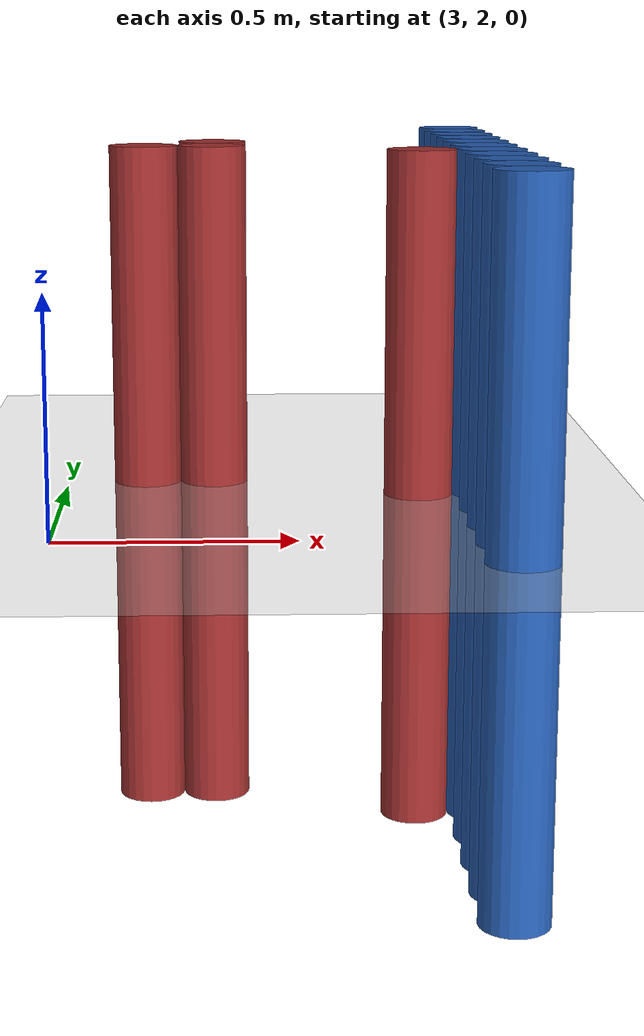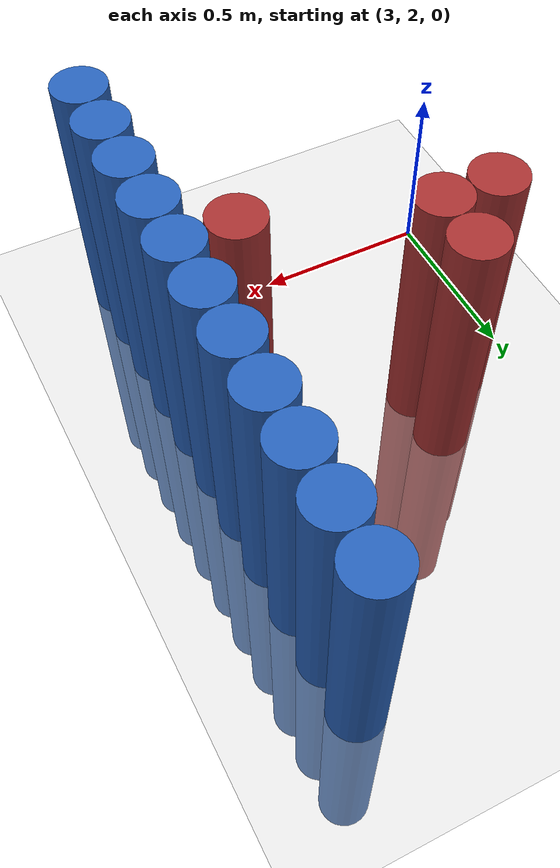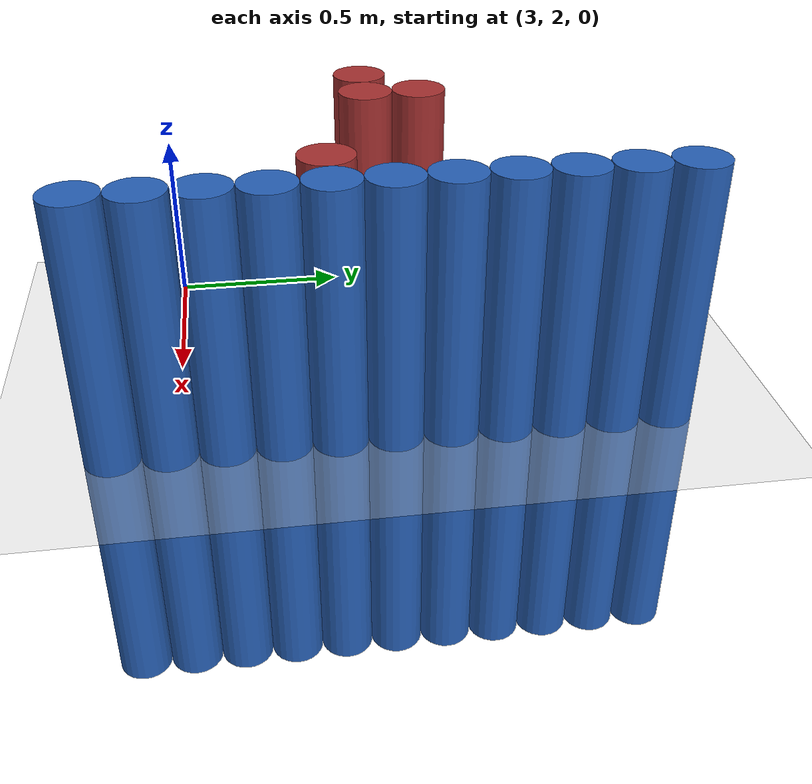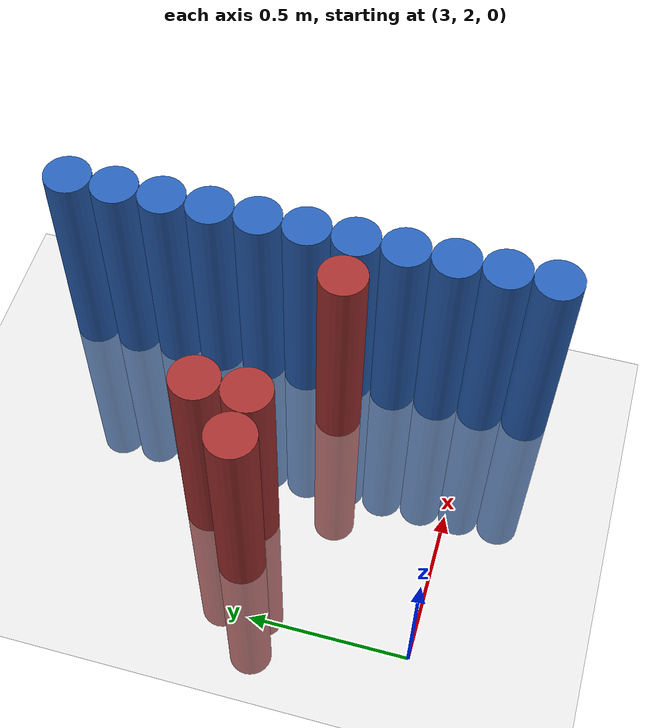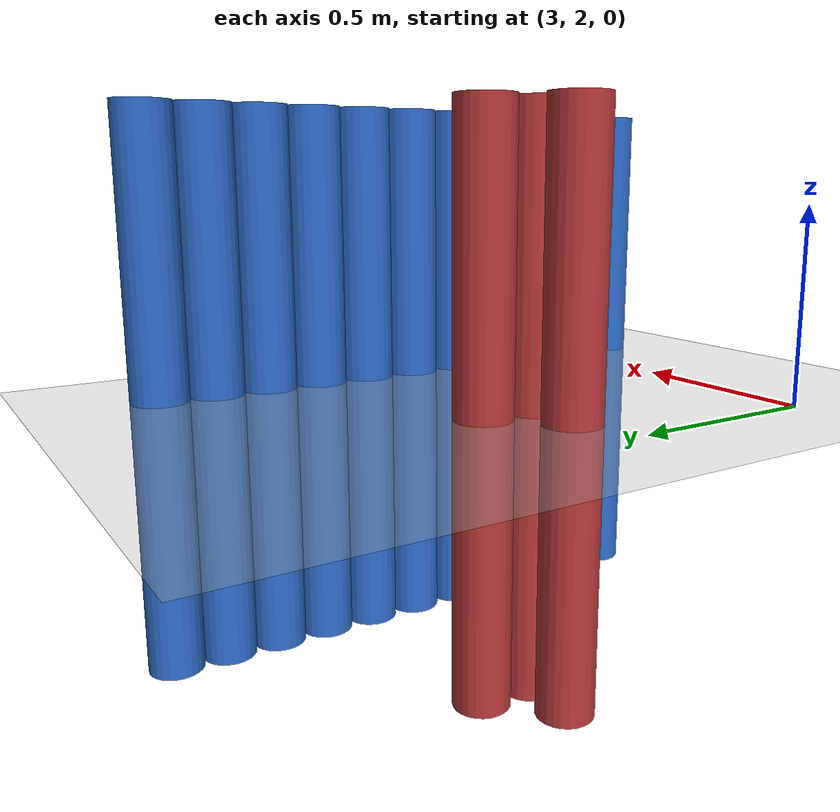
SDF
<sdf version="1.6">
 <world name="default">
  <model name="ground_plane">
   <static>1</static>
   <link name="link">
    <collision name="collision">
     <geometry><plane><normal>0 0 1</normal><size>100 100</size></plane></geometry>
     <surface><friction><ode><mu>100</mu><mu2>50</mu2></ode></friction></surface>
    </collision>
    <visual name="visual">
     <cast_shadows>0</cast_shadows>
     <geometry><plane><normal>0 0 1</normal><size>100 100</size></plane></geometry>
     <material>
      <script><uri>file://media/materials/scripts/gazebo.material</uri><name>Gazebo/Grey</name></script>
     </material>
    </visual>
   </link>
  </model>
  <model name="unit_cylinder_140">
   <static>1</static>
   <pose>3.925000 1.975000 0.000000 0.000000 0.000000 0.000000</pose>
   <link name="link">
    <inertial>
     <mass>1</mass>
     <inertia><ixx>0.145833</ixx><ixy>0</ixy><ixz>0</ixz><iyy>0.145833</iyy><iyz>0</iyz><izz>0.125</izz></inertia>
    </inertial>
    <collision name="collision">
     <geometry><cylinder><radius>0.075000</radius><length>1.5</length></cylinder></geometry>
    </collision>
    <visual name="visual">
     <geometry><cylinder><radius>0.075000</radius><length>1.5</length></cylinder></geometry>
     <material>
      <ambient>0.152000 0.379000 0.720000 1</ambient>
      <diffuse>0.152000 0.379000 0.720000 1</diffuse>
     </material>
     <material>
      <script><name>Gazebo/Grey</name><uri>file://media/materials/scripts/gazebo.material</uri></script>
     </material>
    </visual>
   </link>
  </model>
  <model name="unit_cylinder_142">
   <static>1</static>
   <pose>3.925000 2.125000 0.000000 0.000000 0.000000 0.000000</pose>
   <link name="link">
    <inertial>
     <mass>1</mass>
     <inertia><ixx>0.145833</ixx><ixy>0</ixy><ixz>0</ixz><iyy>0.145833</iyy><iyz>0</iyz><izz>0.125</izz></inertia>
    </inertial>
    <collision name="collision">
     <geometry><cylinder><radius>0.075000</radius><length>1.5</length></cylinder></geometry>
    </collision>
    <visual name="visual">
     <geometry><cylinder><radius>0.075000</radius><length>1.5</length></cylinder></geometry>
     <material>
      <ambient>0.152000 0.379000 0.720000 1</ambient>
      <diffuse>0.152000 0.379000 0.720000 1</diffuse>
     </material>
     <material>
      <script><name>Gazebo/Grey</name><uri>file://media/materials/scripts/gazebo.material</uri></script>
     </material>
    </visual>
   </link>
  </model>
  <model name="unit_cylinder_144">
   <static>1</static>
   <pose>3.925000 2.275000 0.000000 0.000000 0.000000 0.000000</pose>
   <link name="link">
    <inertial>
     <mass>1</mass>
     <inertia><ixx>0.145833</ixx><ixy>0</ixy><ixz>0</ixz><iyy>0.145833</iyy><iyz>0</iyz><izz>0.125</izz></inertia>
    </inertial>
    <collision name="collision">
     <geometry><cylinder><radius>0.075000</radius><length>1.5</length></cylinder></geometry>
    </collision>
    <visual name="visual">
     <geometry><cylinder><radius>0.075000</radius><length>1.5</length></cylinder></geometry>
     <material>
      <ambient>0.152000 0.379000 0.720000 1</ambient>
      <diffuse>0.152000 0.379000 0.720000 1</diffuse>
     </material>
     <material>
      <script><name>Gazebo/Grey</name><uri>file://media/materials/scripts/gazebo.material</uri></script>
     </material>
    </visual>
   </link>
  </model>
  <model name="unit_cylinder_146">
   <static>1</static>
   <pose>3.925000 2.425000 0.000000 0.000000 0.000000 0.000000</pose>
   <link name="link">
    <inertial>
     <mass>1</mass>
     <inertia><ixx>0.145833</ixx><ixy>0</ixy><ixz>0</ixz><iyy>0.145833</iyy><iyz>0</iyz><izz>0.125</izz></inertia>
    </inertial>
    <collision name="collision">
     <geometry><cylinder><radius>0.075000</radius><length>1.5</length></cylinder></geometry>
    </collision>
    <visual name="visual">
     <geometry><cylinder><radius>0.075000</radius><length>1.5</length></cylinder></geometry>
     <material>
      <ambient>0.152000 0.379000 0.720000 1</ambient>
      <diffuse>0.152000 0.379000 0.720000 1</diffuse>
     </material>
     <material>
      <script><name>Gazebo/Grey</name><uri>file://media/materials/scripts/gazebo.material</uri></script>
     </material>
    </visual>
   </link>
  </model>
  <model name="unit_cylinder_148">
   <static>1</static>
   <pose>3.925000 2.575000 0.000000 0.000000 0.000000 0.000000</pose>
   <link name="link">
    <inertial>
     <mass>1</mass>
     <inertia><ixx>0.145833</ixx><ixy>0</ixy><ixz>0</ixz><iyy>0.145833</iyy><iyz>0</iyz><izz>0.125</izz></inertia>
    </inertial>
    <collision name="collision">
     <geometry><cylinder><radius>0.075000</radius><length>1.5</length></cylinder></geometry>
    </collision>
    <visual name="visual">
     <geometry><cylinder><radius>0.075000</radius><length>1.5</length></cylinder></geometry>
     <material>
      <ambient>0.152000 0.379000 0.720000 1</ambient>
      <diffuse>0.152000 0.379000 0.720000 1</diffuse>
     </material>
     <material>
      <script><name>Gazebo/Grey</name><uri>file://media/materials/scripts/gazebo.material</uri></script>
     </material>
    </visual>
   </link>
  </model>
  <model name="unit_cylinder_150">
   <static>1</static>
   <pose>3.925000 2.725000 0.000000 0.000000 0.000000 0.000000</pose>
   <link name="link">
    <inertial>
     <mass>1</mass>
     <inertia><ixx>0.145833</ixx><ixy>0</ixy><ixz>0</ixz><iyy>0.145833</iyy><iyz>0</iyz><izz>0.125</izz></inertia>
    </inertial>
    <collision name="collision">
     <geometry><cylinder><radius>0.075000</radius><length>1.5</length></cylinder></geometry>
    </collision>
    <visual name="visual">
     <geometry><cylinder><radius>0.075000</radius><length>1.5</length></cylinder></geometry>
     <material>
      <ambient>0.152000 0.379000 0.720000 1</ambient>
      <diffuse>0.152000 0.379000 0.720000 1</diffuse>
     </material>
     <material>
      <script><name>Gazebo/Grey</name><uri>file://media/materials/scripts/gazebo.material</uri></script>
     </material>
    </visual>
   </link>
  </model>
  <model name="unit_cylinder_152">
   <static>1</static>
   <pose>3.925000 2.875000 0.000000 0.000000 0.000000 0.000000</pose>
   <link name="link">
    <inertial>
     <mass>1</mass>
     <inertia><ixx>0.145833</ixx><ixy>0</ixy><ixz>0</ixz><iyy>0.145833</iyy><iyz>0</iyz><izz>0.125</izz></inertia>
    </inertial>
    <collision name="collision">
     <geometry><cylinder><radius>0.075000</radius><length>1.5</length></cylinder></geometry>
    </collision>
    <visual name="visual">
     <geometry><cylinder><radius>0.075000</radius><length>1.5</length></cylinder></geometry>
     <material>
      <ambient>0.152000 0.379000 0.720000 1</ambient>
      <diffuse>0.152000 0.379000 0.720000 1</diffuse>
     </material>
     <material>
      <script><name>Gazebo/Grey</name><uri>file://media/materials/scripts/gazebo.material</uri></script>
     </material>
    </visual>
   </link>
  </model>
  <model name="unit_cylinder_154">
   <static>1</static>
   <pose>3.925000 3.025000 0.000000 0.000000 0.000000 0.000000</pose>
   <link name="link">
    <inertial>
     <mass>1</mass>
     <inertia><ixx>0.145833</ixx><ixy>0</ixy><ixz>0</ixz><iyy>0.145833</iyy><iyz>0</iyz><izz>0.125</izz></inertia>
    </inertial>
    <collision name="collision">
     <geometry><cylinder><radius>0.075000</radius><length>1.5</length></cylinder></geometry>
    </collision>
    <visual name="visual">
     <geometry><cylinder><radius>0.075000</radius><length>1.5</length></cylinder></geometry>
     <material>
      <ambient>0.152000 0.379000 0.720000 1</ambient>
      <diffuse>0.152000 0.379000 0.720000 1</diffuse>
     </material>
     <material>
      <script><name>Gazebo/Grey</name><uri>file://media/materials/scripts/gazebo.material</uri></script>
     </material>
    </visual>
   </link>
  </model>
  <model name="unit_cylinder_156">
   <static>1</static>
   <pose>3.925000 3.175000 0.000000 0.000000 0.000000 0.000000</pose>
   <link name="link">
    <inertial>
     <mass>1</mass>
     <inertia><ixx>0.145833</ixx><ixy>0</ixy><ixz>0</ixz><iyy>0.145833</iyy><iyz>0</iyz><izz>0.125</izz></inertia>
    </inertial>
    <collision name="collision">
     <geometry><cylinder><radius>0.075000</radius><length>1.5</length></cylinder></geometry>
    </collision>
    <visual name="visual">
     <geometry><cylinder><radius>0.075000</radius><length>1.5</length></cylinder></geometry>
     <material>
      <ambient>0.152000 0.379000 0.720000 1</ambient>
      <diffuse>0.152000 0.379000 0.720000 1</diffuse>
     </material>
     <material>
      <script><name>Gazebo/Grey</name><uri>file://media/materials/scripts/gazebo.material</uri></script>
     </material>
    </visual>
   </link>
  </model>
  <model name="unit_cylinder_158">
   <static>1</static>
   <pose>3.925000 3.325000 0.000000 0.000000 0.000000 0.000000</pose>
   <link name="link">
    <inertial>
     <mass>1</mass>
     <inertia><ixx>0.145833</ixx><ixy>0</ixy><ixz>0</ixz><iyy>0.145833</iyy><iyz>0</iyz><izz>0.125</izz></inertia>
    </inertial>
    <collision name="collision">
     <geometry><cylinder><radius>0.075000</radius><length>1.5</length></cylinder></geometry>
    </collision>
    <visual name="visual">
     <geometry><cylinder><radius>0.075000</radius><length>1.5</length></cylinder></geometry>
     <material>
      <ambient>0.152000 0.379000 0.720000 1</ambient>
      <diffuse>0.152000 0.379000 0.720000 1</diffuse>
     </material>
     <material>
      <script><name>Gazebo/Grey</name><uri>file://media/materials/scripts/gazebo.material</uri></script>
     </material>
    </visual>
   </link>
  </model>
  <model name="unit_cylinder_374">
   <static>1</static>
   <pose>3.175000 2.575000 0.000000 0.000000 0.000000 0.000000</pose>
   <link name="link">
    <inertial>
     <mass>1</mass>
     <inertia><ixx>0.145833</ixx><ixy>0</ixy><ixz>0</ixz><iyy>0.145833</iyy><iyz>0</iyz><izz>0.125</izz></inertia>
    </inertial>
    <collision name="collision">
     <geometry><cylinder><radius>0.075000</radius><length>1.5</length></cylinder></geometry>
    </collision>
    <visual name="visual">
     <geometry><cylinder><radius>0.075000</radius><length>1.5</length></cylinder></geometry>
     <material>
      <ambient>0.648000 0.192000 0.192000 1</ambient>
      <diffuse>0.648000 0.192000 0.192000 1</diffuse>
     </material>
     <material>
      <script><name>Gazebo/Grey</name><uri>file://media/materials/scripts/gazebo.material</uri></script>
     </material>
    </visual>
   </link>
  </model>
  <model name="unit_cylinder_377">
   <static>1</static>
   <pose>3.325000 2.575000 0.000000 0.000000 0.000000 0.000000</pose>
   <link name="link">
    <inertial>
     <mass>1</mass>
     <inertia><ixx>0.145833</ixx><ixy>0</ixy><ixz>0</ixz><iyy>0.145833</iyy><iyz>0</iyz><izz>0.125</izz></inertia>
    </inertial>
    <collision name="collision">
     <geometry><cylinder><radius>0.075000</radius><length>1.5</length></cylinder></geometry>
    </collision>
    <visual name="visual">
     <geometry><cylinder><radius>0.075000</radius><length>1.5</length></cylinder></geometry>
     <material>
      <ambient>0.648000 0.192000 0.192000 1</ambient>
      <diffuse>0.648000 0.192000 0.192000 1</diffuse>
     </material>
     <material>
      <script><name>Gazebo/Grey</name><uri>file://media/materials/scripts/gazebo.material</uri></script>
     </material>
    </visual>
   </link>
  </model>
  <model name="unit_cylinder_378">
   <static>1</static>
   <pose>3.325000 2.725000 0.000000 0.000000 0.000000 0.000000</pose>
   <link name="link">
    <inertial>
     <mass>1</mass>
     <inertia><ixx>0.145833</ixx><ixy>0</ixy><ixz>0</ixz><iyy>0.145833</iyy><iyz>0</iyz><izz>0.125</izz></inertia>
    </inertial>
    <collision name="collision">
     <geometry><cylinder><radius>0.075000</radius><length>1.5</length></cylinder></geometry>
    </collision>
    <visual name="visual">
     <geometry><cylinder><radius>0.075000</radius><length>1.5</length></cylinder></geometry>
     <material>
      <ambient>0.648000 0.192000 0.192000 1</ambient>
      <diffuse>0.648000 0.192000 0.192000 1</diffuse>
     </material>
     <material>
      <script><name>Gazebo/Grey</name><uri>file://media/materials/scripts/gazebo.material</uri></script>
     </material>
    </visual>
   </link>
  </model>
  <model name="unit_cylinder_389">
   <static>1</static>
   <pose>3.775000 2.425000 0.000000 0.000000 0.000000 0.000000</pose>
   <link name="link">
    <inertial>
     <mass>1</mass>
     <inertia><ixx>0.145833</ixx><ixy>0</ixy><ixz>0</ixz><iyy>0.145833</iyy><iyz>0</iyz><izz>0.125</izz></inertia>
    </inertial>
    <collision name="collision">
     <geometry><cylinder><radius>0.075000</radius><length>1.5</length></cylinder></geometry>
    </collision>
    <visual name="visual">
     <geometry><cylinder><radius>0.075000</radius><length>1.5</length></cylinder></geometry>
     <material>
      <ambient>0.648000 0.192000 0.192000 1</ambient>
      <diffuse>0.648000 0.192000 0.192000 1</diffuse>
     </material>
     <material>
      <script><name>Gazebo/Grey</name><uri>file://media/materials/scripts/gazebo.material</uri></script>
     </material>
    </visual>
   </link>
  </model>
  <model name="unit_cylinder_424">
   <static>1</static>
   <pose>3.925000 1.825000 0.000000 0.000000 0.000000 0.000000</pose>
   <link name="link">
    <inertial>
     <mass>1</mass>
     <inertia><ixx>0.145833</ixx><ixy>0</ixy><ixz>0</ixz><iyy>0.145833</iyy><iyz>0</iyz><izz>0.125</izz></inertia>
    </inertial>
    <collision name="collision">
     <geometry><cylinder><radius>0.075000</radius><length>1.5</length></cylinder></geometry>
    </collision>
    <visual name="visual">
     <geometry><cylinder><radius>0.075000</radius><length>1.5</length></cylinder></geometry>
     <material>
      <ambient>0.152000 0.379000 0.720000 1</ambient>
      <diffuse>0.152000 0.379000 0.720000 1</diffuse>
     </material>
     <material>
      <script><name>Gazebo/Grey</name><uri>file://media/materials/scripts/gazebo.material</uri></script>
     </material>
    </visual>
   </link>
  </model>
  <model name="unit_cylinder_425">
   <static>1</static>
   <pose>3.925000 1.975000 0.000000 0.000000 0.000000 0.000000</pose>
   <link name="link">
    <inertial>
     <mass>1</mass>
     <inertia><ixx>0.145833</ixx><ixy>0</ixy><ixz>0</ixz><iyy>0.145833</iyy><iyz>0</iyz><izz>0.125</izz></inertia>
    </inertial>
    <collision name="collision">
     <geometry><cylinder><radius>0.075000</radius><length>1.5</length></cylinder></geometry>
    </collision>
    <visual name="visual">
     <geometry><cylinder><radius>0.075000</radius><length>1.5</length></cylinder></geometry>
     <material>
      <ambient>0.152000 0.379000 0.720000 1</ambient>
      <diffuse>0.152000 0.379000 0.720000 1</diffuse>
     </material>
     <material>
      <script><name>Gazebo/Grey</name><uri>file://media/materials/scripts/gazebo.material</uri></script>
     </material>
    </visual>
   </link>
  </model>
  <model name="unit_cylinder_426">
   <static>1</static>
   <pose>3.925000 2.125000 0.000000 0.000000 0.000000 0.000000</pose>
   <link name="link">
    <inertial>
     <mass>1</mass>
     <inertia><ixx>0.145833</ixx><ixy>0</ixy><ixz>0</ixz><iyy>0.145833</iyy><iyz>0</iyz><izz>0.125</izz></inertia>
    </inertial>
    <collision name="collision">
     <geometry><cylinder><radius>0.075000</radius><length>1.5</length></cylinder></geometry>
    </collision>
    <visual name="visual">
     <geometry><cylinder><radius>0.075000</radius><length>1.5</length></cylinder></geometry>
     <material>
      <ambient>0.152000 0.379000 0.720000 1</ambient>
      <diffuse>0.152000 0.379000 0.720000 1</diffuse>
     </material>
     <material>
      <script><name>Gazebo/Grey</name><uri>file://media/materials/scripts/gazebo.material</uri></script>
     </material>
    </visual>
   </link>
  </model>
  <model name="unit_cylinder_427">
   <static>1</static>
   <pose>3.925000 2.275000 0.000000 0.000000 0.000000 0.000000</pose>
   <link name="link">
    <inertial>
     <mass>1</mass>
     <inertia><ixx>0.145833</ixx><ixy>0</ixy><ixz>0</ixz><iyy>0.145833</iyy><iyz>0</iyz><izz>0.125</izz></inertia>
    </inertial>
    <collision name="collision">
     <geometry><cylinder><radius>0.075000</radius><length>1.5</length></cylinder></geometry>
    </collision>
    <visual name="visual">
     <geometry><cylinder><radius>0.075000</radius><length>1.5</length></cylinder></geometry>
     <material>
      <ambient>0.152000 0.379000 0.720000 1</ambient>
      <diffuse>0.152000 0.379000 0.720000 1</diffuse>
     </material>
     <material>
      <script><name>Gazebo/Grey</name><uri>file://media/materials/scripts/gazebo.material</uri></script>
     </material>
    </visual>
   </link>
  </model>
  <model name="unit_cylinder_428">
   <static>1</static>
   <pose>3.925000 2.425000 0.000000 0.000000 0.000000 0.000000</pose>
   <link name="link">
    <inertial>
     <mass>1</mass>
     <inertia><ixx>0.145833</ixx><ixy>0</ixy><ixz>0</ixz><iyy>0.145833</iyy><iyz>0</iyz><izz>0.125</izz></inertia>
    </inertial>
    <collision name="collision">
     <geometry><cylinder><radius>0.075000</radius><length>1.5</length></cylinder></geometry>
    </collision>
    <visual name="visual">
     <geometry><cylinder><radius>0.075000</radius><length>1.5</length></cylinder></geometry>
     <material>
      <ambient>0.152000 0.379000 0.720000 1</ambient>
      <diffuse>0.152000 0.379000 0.720000 1</diffuse>
     </material>
     <material>
      <script><name>Gazebo/Grey</name><uri>file://media/materials/scripts/gazebo.material</uri></script>
     </material>
    </visual>
   </link>
  </model>
  <model name="unit_cylinder_429">
   <static>1</static>
   <pose>3.925000 2.575000 0.000000 0.000000 0.000000 0.000000</pose>
   <link name="link">
    <inertial>
     <mass>1</mass>
     <inertia><ixx>0.145833</ixx><ixy>0</ixy><ixz>0</ixz><iyy>0.145833</iyy><iyz>0</iyz><izz>0.125</izz></inertia>
    </inertial>
    <collision name="collision">
     <geometry><cylinder><radius>0.075000</radius><length>1.5</length></cylinder></geometry>
    </collision>
    <visual name="visual">
     <geometry><cylinder><radius>0.075000</radius><length>1.5</length></cylinder></geometry>
     <material>
      <ambient>0.152000 0.379000 0.720000 1</ambient>
      <diffuse>0.152000 0.379000 0.720000 1</diffuse>
     </material>
     <material>
      <script><name>Gazebo/Grey</name><uri>file://media/materials/scripts/gazebo.material</uri></script>
     </material>
    </visual>
   </link>
  </model>
  <model name="unit_cylinder_430">
   <static>1</static>
   <pose>3.925000 2.725000 0.000000 0.000000 0.000000 0.000000</pose>
   <link name="link">
    <inertial>
     <mass>1</mass>
     <inertia><ixx>0.145833</ixx><ixy>0</ixy><ixz>0</ixz><iyy>0.145833</iyy><iyz>0</iyz><izz>0.125</izz></inertia>
    </inertial>
    <collision name="collision">
     <geometry><cylinder><radius>0.075000</radius><length>1.5</length></cylinder></geometry>
    </collision>
    <visual name="visual">
     <geometry><cylinder><radius>0.075000</radius><length>1.5</length></cylinder></geometry>
     <material>
      <ambient>0.152000 0.379000 0.720000 1</ambient>
      <diffuse>0.152000 0.379000 0.720000 1</diffuse>
     </material>
     <material>
      <script><name>Gazebo/Grey</name><uri>file://media/materials/scripts/gazebo.material</uri></script>
     </material>
    </visual>
   </link>
  </model>
  <model name="unit_cylinder_431">
   <static>1</static>
   <pose>3.925000 2.875000 0.000000 0.000000 0.000000 0.000000</pose>
   <link name="link">
    <inertial>
     <mass>1</mass>
     <inertia><ixx>0.145833</ixx><ixy>0</ixy><ixz>0</ixz><iyy>0.145833</iyy><iyz>0</iyz><izz>0.125</izz></inertia>
    </inertial>
    <collision name="collision">
     <geometry><cylinder><radius>0.075000</radius><length>1.5</length></cylinder></geometry>
    </collision>
    <visual name="visual">
     <geometry><cylinder><radius>0.075000</radius><length>1.5</length></cylinder></geometry>
     <material>
      <ambient>0.152000 0.379000 0.720000 1</ambient>
      <diffuse>0.152000 0.379000 0.720000 1</diffuse>
     </material>
     <material>
      <script><name>Gazebo/Grey</name><uri>file://media/materials/scripts/gazebo.material</uri></script>
     </material>
    </visual>
   </link>
  </model>
  <model name="unit_cylinder_432">
   <static>1</static>
   <pose>3.925000 3.025000 0.000000 0.000000 0.000000 0.000000</pose>
   <link name="link">
    <inertial>
     <mass>1</mass>
     <inertia><ixx>0.145833</ixx><ixy>0</ixy><ixz>0</ixz><iyy>0.145833</iyy><iyz>0</iyz><izz>0.125</izz></inertia>
    </inertial>
    <collision name="collision">
     <geometry><cylinder><radius>0.075000</radius><length>1.5</length></cylinder></geometry>
    </collision>
    <visual name="visual">
     <geometry><cylinder><radius>0.075000</radius><length>1.5</length></cylinder></geometry>
     <material>
      <ambient>0.152000 0.379000 0.720000 1</ambient>
      <diffuse>0.152000 0.379000 0.720000 1</diffuse>
     </material>
     <material>
      <script><name>Gazebo/Grey</name><uri>file://media/materials/scripts/gazebo.material</uri></script>
     </material>
    </visual>
   </link>
  </model>
  <model name="unit_cylinder_433">
   <static>1</static>
   <pose>3.925000 3.175000 0.000000 0.000000 0.000000 0.000000</pose>
   <link name="link">
    <inertial>
     <mass>1</mass>
     <inertia><ixx>0.145833</ixx><ixy>0</ixy><ixz>0</ixz><iyy>0.145833</iyy><iyz>0</iyz><izz>0.125</izz></inertia>
    </inertial>
    <collision name="collision">
     <geometry><cylinder><radius>0.075000</radius><length>1.5</length></cylinder></geometry>
    </collision>
    <visual name="visual">
     <geometry><cylinder><radius>0.075000</radius><length>1.5</length></cylinder></geometry>
     <material>
      <ambient>0.152000 0.379000 0.720000 1</ambient>
      <diffuse>0.152000 0.379000 0.720000 1</diffuse>
     </material>
     <material>
      <script><name>Gazebo/Grey</name><uri>file://media/materials/scripts/gazebo.material</uri></script>
     </material>
    </visual>
   </link>
  </model>
  <model name="unit_cylinder_434">
   <static>1</static>
   <pose>3.925000 3.325000 0.000000 0.000000 0.000000 0.000000</pose>
   <link name="link">
    <inertial>
     <mass>1</mass>
     <inertia><ixx>0.145833</ixx><ixy>0</ixy><ixz>0</ixz><iyy>0.145833</iyy><iyz>0</iyz><izz>0.125</izz></inertia>
    </inertial>
    <collision name="collision">
     <geometry><cylinder><radius>0.075000</radius><length>1.5</length></cylinder></geometry>
    </collision>
    <visual name="visual">
     <geometry><cylinder><radius>0.075000</radius><length>1.5</length></cylinder></geometry>
     <material>
      <ambient>0.152000 0.379000 0.720000 1</ambient>
      <diffuse>0.152000 0.379000 0.720000 1</diffuse>
     </material>
     <material>
      <script><name>Gazebo/Grey</name><uri>file://media/materials/scripts/gazebo.material</uri></script>
     </material>
    </visual>
   </link>
  </model>
 </world>
</sdf>
